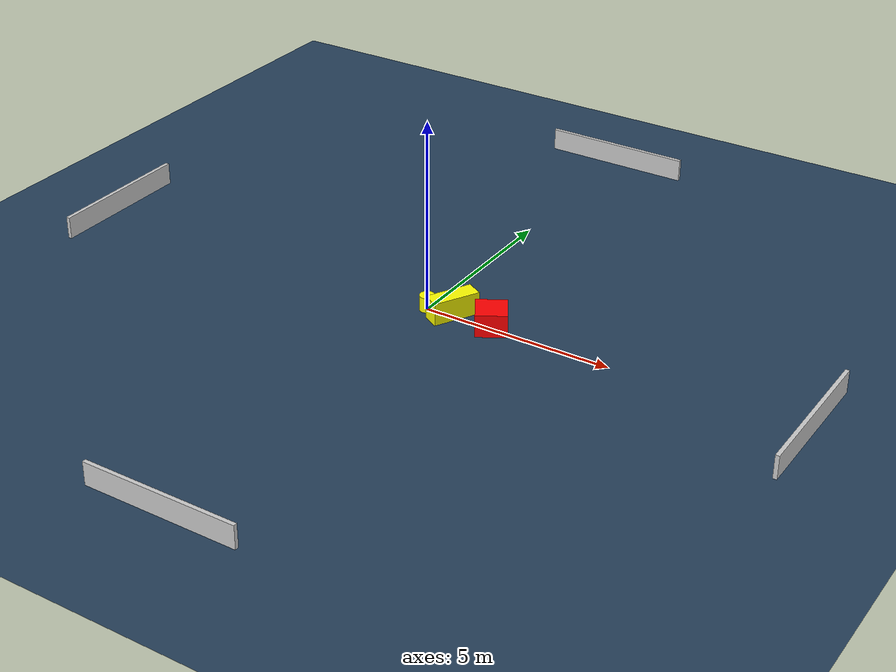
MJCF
<?xml version="1.0" ?>
<mujoco model="generated_environment">
  <option timestep="0.01" integrator="RK4" cone="elliptic"/>
  <default>
    <geom density="1"/>
  </default>
  <asset>
    <texture builtin="gradient" height="3072" name="skybox" rgb1="0.3 0.5 0.7" rgb2="0 0 0" type="skybox" width="512"/>
    <texture builtin="checker" height="300" name="groundplane" rgb1="0.2 0.3 0.4" rgb2="0.1 0.2 0.3" type="2d" width="300"/>
    <material name="groundplane" reflectance="0.2" texrepeat="5 5" texture="groundplane"/>
  </asset>
  <worldbody>
    <light dir="0 0 -1" directional="true" pos="0 0 1.5"/>
    <geom condim="3" friction="0.5 0.005 0.001" material="groundplane" name="floor" pos="0 0 0" size="0 0 0.05" type="plane"/>
    <body name="walls">
      <geom name="wall_1" condim="4" pos="-10.0 0.0 0.3" rgba="0.800000011920929 0.800000011920929 0.800000011920929 1.0" size="0.05 2.0 0.3" type="box"/>
      <geom name="wall_2" condim="4" pos="10.0 0.0 0.3" rgba="0.800000011920929 0.800000011920929 0.800000011920929 1.0" size="0.05 2.0 0.3" type="box"/>
      <geom name="wall_3" condim="4" pos="0.0 -10.0 0.3" rgba="0.800000011920929 0.800000011920929 0.800000011920929 1.0" size="2.0 0.05 0.3" type="box"/>
      <geom name="wall_4" condim="4" pos="0.0 10.0 0.3" rgba="0.800000011920929 0.800000011920929 0.800000011920929 1.0" size="2.0 0.05 0.3" type="box"/>
    </body>
    <body name="robot">
      <joint name="joint_x" type="slide" pos="0 0 0" axis="1 0 0"/>
      <joint name="joint_y" type="slide" pos="0 0 0" axis="0 1 0"/>
      <geom name="robot" type="cylinder" pos="0.0 0.0 0.2" size="0.2 0.2 0.0" mass="5.0" friction="1.0 0.005 0.0001" condim="4" rgba="1.0 1.0 0.0 1.0"/>
    </body>
    <body name="obstacle_1_movable">
      <geom name="obstacle_1_movable" condim="4" pos="0.6882552979190824 0.0681619622527705 0.3" euler="0 0 61.389883816443685" friction="0.0 0.005 0.001" rgba="1.0 1.0 0.0 1.0" size="0.6207386226109964 0.23179657805917914 0.3" type="box" mass="0.1"/>
      <joint type="free"/>
    </body>
    <body name="obstacle_2_static">
      <geom name="obstacle_2_static" condim="4" pos="1.8180939193705807 0.027966686889066582 0.3" euler="0 0 210.68550973200038" friction="0.0 0.005 0.001" rgba="1.0 0.0 0.0 1.0" size="0.39787681595068425 0.39781728248739046 0.3" type="box"/>
    </body>
  </worldbody>
  <actuator>
    <motor name="actuator_x" joint="joint_x" gear="1" ctrlrange="-1 1"/>
    <motor name="actuator_y" joint="joint_y" gear="1" ctrlrange="-1 1"/>
  </actuator>
</mujoco>
